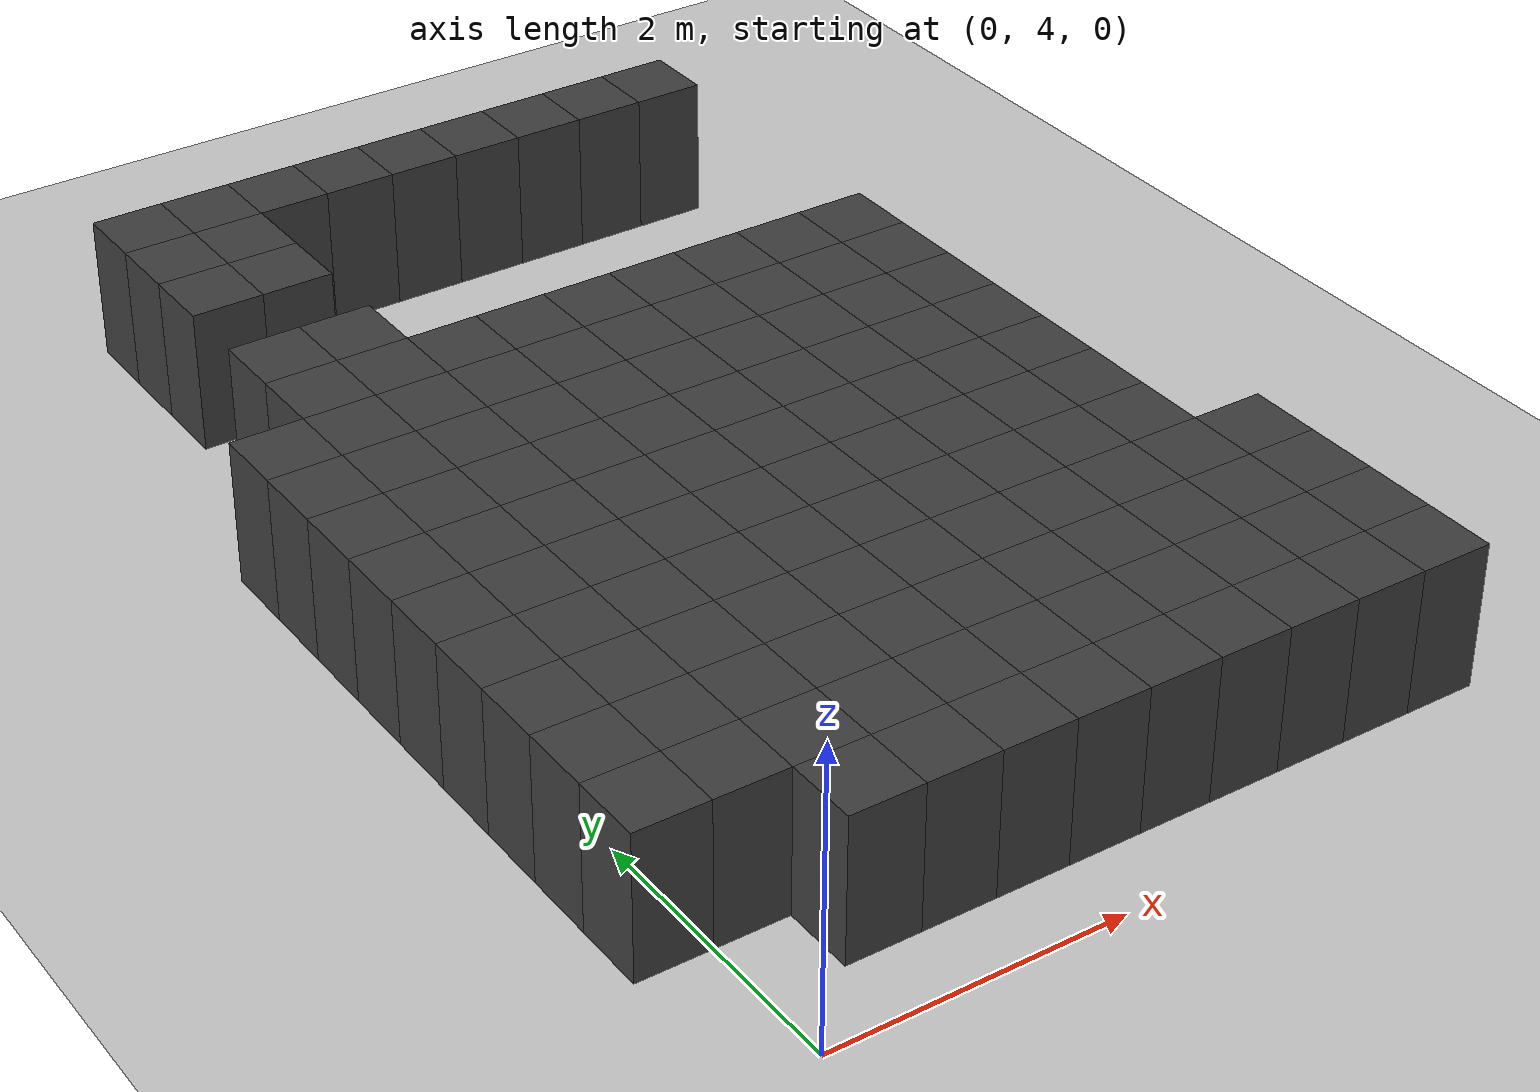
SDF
<sdf version="1.7">
 <world name="map_10764">
  <model name="ground_plane">
   <static>true</static>
   <link name="link">
    <collision name="collision">
     <geometry><plane><normal>0 0 1</normal><size>200 200</size></plane></geometry>
    </collision>
    <visual name="visual">
     <geometry><plane><normal>0 0 1</normal><size>200 200</size></plane></geometry>
     <material><ambient>0.8 0.8 0.8 1</ambient><diffuse>0.8 0.8 0.8 1</diffuse></material>
    </visual>
   </link>
  </model>
  <model name="maze_environment">
   <static>true</static>
   <link name="wall_25">
    <pose>0.250 12.250 0.500 0 0 0</pose>
    <collision name="col"><geometry><box><size>0.5 0.5 1.0</size></box></geometry></collision>
    <visual name="vis">
     <geometry><box><size>0.5 0.5 1.0</size></box></geometry>
     <material><ambient>0.15 0.15 0.15 1</ambient><diffuse>0.25 0.25 0.25 1</diffuse></material>
    </visual>
   </link>
   <link name="wall_26">
    <pose>0.750 12.250 0.500 0 0 0</pose>
    <collision name="col"><geometry><box><size>0.5 0.5 1.0</size></box></geometry></collision>
    <visual name="vis">
     <geometry><box><size>0.5 0.5 1.0</size></box></geometry>
     <material><ambient>0.15 0.15 0.15 1</ambient><diffuse>0.25 0.25 0.25 1</diffuse></material>
    </visual>
   </link>
   <link name="wall_27">
    <pose>1.250 12.250 0.500 0 0 0</pose>
    <collision name="col"><geometry><box><size>0.5 0.5 1.0</size></box></geometry></collision>
    <visual name="vis">
     <geometry><box><size>0.5 0.5 1.0</size></box></geometry>
     <material><ambient>0.15 0.15 0.15 1</ambient><diffuse>0.25 0.25 0.25 1</diffuse></material>
    </visual>
   </link>
   <link name="wall_28">
    <pose>1.750 12.250 0.500 0 0 0</pose>
    <collision name="col"><geometry><box><size>0.5 0.5 1.0</size></box></geometry></collision>
    <visual name="vis">
     <geometry><box><size>0.5 0.5 1.0</size></box></geometry>
     <material><ambient>0.15 0.15 0.15 1</ambient><diffuse>0.25 0.25 0.25 1</diffuse></material>
    </visual>
   </link>
   <link name="wall_29">
    <pose>2.250 12.250 0.500 0 0 0</pose>
    <collision name="col"><geometry><box><size>0.5 0.5 1.0</size></box></geometry></collision>
    <visual name="vis">
     <geometry><box><size>0.5 0.5 1.0</size></box></geometry>
     <material><ambient>0.15 0.15 0.15 1</ambient><diffuse>0.25 0.25 0.25 1</diffuse></material>
    </visual>
   </link>
   <link name="wall_30">
    <pose>2.750 12.250 0.500 0 0 0</pose>
    <collision name="col"><geometry><box><size>0.5 0.5 1.0</size></box></geometry></collision>
    <visual name="vis">
     <geometry><box><size>0.5 0.5 1.0</size></box></geometry>
     <material><ambient>0.15 0.15 0.15 1</ambient><diffuse>0.25 0.25 0.25 1</diffuse></material>
    </visual>
   </link>
   <link name="wall_31">
    <pose>3.250 12.250 0.500 0 0 0</pose>
    <collision name="col"><geometry><box><size>0.5 0.5 1.0</size></box></geometry></collision>
    <visual name="vis">
     <geometry><box><size>0.5 0.5 1.0</size></box></geometry>
     <material><ambient>0.15 0.15 0.15 1</ambient><diffuse>0.25 0.25 0.25 1</diffuse></material>
    </visual>
   </link>
   <link name="wall_32">
    <pose>3.750 12.250 0.500 0 0 0</pose>
    <collision name="col"><geometry><box><size>0.5 0.5 1.0</size></box></geometry></collision>
    <visual name="vis">
     <geometry><box><size>0.5 0.5 1.0</size></box></geometry>
     <material><ambient>0.15 0.15 0.15 1</ambient><diffuse>0.25 0.25 0.25 1</diffuse></material>
    </visual>
   </link>
   <link name="wall_33">
    <pose>4.250 12.250 0.500 0 0 0</pose>
    <collision name="col"><geometry><box><size>0.5 0.5 1.0</size></box></geometry></collision>
    <visual name="vis">
     <geometry><box><size>0.5 0.5 1.0</size></box></geometry>
     <material><ambient>0.15 0.15 0.15 1</ambient><diffuse>0.25 0.25 0.25 1</diffuse></material>
    </visual>
   </link>
   <link name="wall_72">
    <pose>0.250 11.750 0.500 0 0 0</pose>
    <collision name="col"><geometry><box><size>0.5 0.5 1.0</size></box></geometry></collision>
    <visual name="vis">
     <geometry><box><size>0.5 0.5 1.0</size></box></geometry>
     <material><ambient>0.15 0.15 0.15 1</ambient><diffuse>0.25 0.25 0.25 1</diffuse></material>
    </visual>
   </link>
   <link name="wall_73">
    <pose>0.750 11.750 0.500 0 0 0</pose>
    <collision name="col"><geometry><box><size>0.5 0.5 1.0</size></box></geometry></collision>
    <visual name="vis">
     <geometry><box><size>0.5 0.5 1.0</size></box></geometry>
     <material><ambient>0.15 0.15 0.15 1</ambient><diffuse>0.25 0.25 0.25 1</diffuse></material>
    </visual>
   </link>
   <link name="wall_112">
    <pose>0.250 11.250 0.500 0 0 0</pose>
    <collision name="col"><geometry><box><size>0.5 0.5 1.0</size></box></geometry></collision>
    <visual name="vis">
     <geometry><box><size>0.5 0.5 1.0</size></box></geometry>
     <material><ambient>0.15 0.15 0.15 1</ambient><diffuse>0.25 0.25 0.25 1</diffuse></material>
    </visual>
   </link>
   <link name="wall_113">
    <pose>0.750 11.250 0.500 0 0 0</pose>
    <collision name="col"><geometry><box><size>0.5 0.5 1.0</size></box></geometry></collision>
    <visual name="vis">
     <geometry><box><size>0.5 0.5 1.0</size></box></geometry>
     <material><ambient>0.15 0.15 0.15 1</ambient><diffuse>0.25 0.25 0.25 1</diffuse></material>
    </visual>
   </link>
   <link name="wall_189">
    <pose>0.250 10.250 0.500 0 0 0</pose>
    <collision name="col"><geometry><box><size>0.5 0.5 1.0</size></box></geometry></collision>
    <visual name="vis">
     <geometry><box><size>0.5 0.5 1.0</size></box></geometry>
     <material><ambient>0.15 0.15 0.15 1</ambient><diffuse>0.25 0.25 0.25 1</diffuse></material>
    </visual>
   </link>
   <link name="wall_190">
    <pose>0.750 10.250 0.500 0 0 0</pose>
    <collision name="col"><geometry><box><size>0.5 0.5 1.0</size></box></geometry></collision>
    <visual name="vis">
     <geometry><box><size>0.5 0.5 1.0</size></box></geometry>
     <material><ambient>0.15 0.15 0.15 1</ambient><diffuse>0.25 0.25 0.25 1</diffuse></material>
    </visual>
   </link>
   <link name="wall_230">
    <pose>0.250 9.750 0.500 0 0 0</pose>
    <collision name="col"><geometry><box><size>0.5 0.5 1.0</size></box></geometry></collision>
    <visual name="vis">
     <geometry><box><size>0.5 0.5 1.0</size></box></geometry>
     <material><ambient>0.15 0.15 0.15 1</ambient><diffuse>0.25 0.25 0.25 1</diffuse></material>
    </visual>
   </link>
   <link name="wall_231">
    <pose>0.750 9.750 0.500 0 0 0</pose>
    <collision name="col"><geometry><box><size>0.5 0.5 1.0</size></box></geometry></collision>
    <visual name="vis">
     <geometry><box><size>0.5 0.5 1.0</size></box></geometry>
     <material><ambient>0.15 0.15 0.15 1</ambient><diffuse>0.25 0.25 0.25 1</diffuse></material>
    </visual>
   </link>
   <link name="wall_232">
    <pose>1.250 9.750 0.500 0 0 0</pose>
    <collision name="col"><geometry><box><size>0.5 0.5 1.0</size></box></geometry></collision>
    <visual name="vis">
     <geometry><box><size>0.5 0.5 1.0</size></box></geometry>
     <material><ambient>0.15 0.15 0.15 1</ambient><diffuse>0.25 0.25 0.25 1</diffuse></material>
    </visual>
   </link>
   <link name="wall_233">
    <pose>1.750 9.750 0.500 0 0 0</pose>
    <collision name="col"><geometry><box><size>0.5 0.5 1.0</size></box></geometry></collision>
    <visual name="vis">
     <geometry><box><size>0.5 0.5 1.0</size></box></geometry>
     <material><ambient>0.15 0.15 0.15 1</ambient><diffuse>0.25 0.25 0.25 1</diffuse></material>
    </visual>
   </link>
   <link name="wall_234">
    <pose>2.250 9.750 0.500 0 0 0</pose>
    <collision name="col"><geometry><box><size>0.5 0.5 1.0</size></box></geometry></collision>
    <visual name="vis">
     <geometry><box><size>0.5 0.5 1.0</size></box></geometry>
     <material><ambient>0.15 0.15 0.15 1</ambient><diffuse>0.25 0.25 0.25 1</diffuse></material>
    </visual>
   </link>
   <link name="wall_235">
    <pose>2.750 9.750 0.500 0 0 0</pose>
    <collision name="col"><geometry><box><size>0.5 0.5 1.0</size></box></geometry></collision>
    <visual name="vis">
     <geometry><box><size>0.5 0.5 1.0</size></box></geometry>
     <material><ambient>0.15 0.15 0.15 1</ambient><diffuse>0.25 0.25 0.25 1</diffuse></material>
    </visual>
   </link>
   <link name="wall_236">
    <pose>3.250 9.750 0.500 0 0 0</pose>
    <collision name="col"><geometry><box><size>0.5 0.5 1.0</size></box></geometry></collision>
    <visual name="vis">
     <geometry><box><size>0.5 0.5 1.0</size></box></geometry>
     <material><ambient>0.15 0.15 0.15 1</ambient><diffuse>0.25 0.25 0.25 1</diffuse></material>
    </visual>
   </link>
   <link name="wall_237">
    <pose>3.750 9.750 0.500 0 0 0</pose>
    <collision name="col"><geometry><box><size>0.5 0.5 1.0</size></box></geometry></collision>
    <visual name="vis">
     <geometry><box><size>0.5 0.5 1.0</size></box></geometry>
     <material><ambient>0.15 0.15 0.15 1</ambient><diffuse>0.25 0.25 0.25 1</diffuse></material>
    </visual>
   </link>
   <link name="wall_238">
    <pose>4.250 9.750 0.500 0 0 0</pose>
    <collision name="col"><geometry><box><size>0.5 0.5 1.0</size></box></geometry></collision>
    <visual name="vis">
     <geometry><box><size>0.5 0.5 1.0</size></box></geometry>
     <material><ambient>0.15 0.15 0.15 1</ambient><diffuse>0.25 0.25 0.25 1</diffuse></material>
    </visual>
   </link>
   <link name="wall_277">
    <pose>-0.250 9.250 0.500 0 0 0</pose>
    <collision name="col"><geometry><box><size>0.5 0.5 1.0</size></box></geometry></collision>
    <visual name="vis">
     <geometry><box><size>0.5 0.5 1.0</size></box></geometry>
     <material><ambient>0.15 0.15 0.15 1</ambient><diffuse>0.25 0.25 0.25 1</diffuse></material>
    </visual>
   </link>
   <link name="wall_278">
    <pose>0.250 9.250 0.500 0 0 0</pose>
    <collision name="col"><geometry><box><size>0.5 0.5 1.0</size></box></geometry></collision>
    <visual name="vis">
     <geometry><box><size>0.5 0.5 1.0</size></box></geometry>
     <material><ambient>0.15 0.15 0.15 1</ambient><diffuse>0.25 0.25 0.25 1</diffuse></material>
    </visual>
   </link>
   <link name="wall_279">
    <pose>0.750 9.250 0.500 0 0 0</pose>
    <collision name="col"><geometry><box><size>0.5 0.5 1.0</size></box></geometry></collision>
    <visual name="vis">
     <geometry><box><size>0.5 0.5 1.0</size></box></geometry>
     <material><ambient>0.15 0.15 0.15 1</ambient><diffuse>0.25 0.25 0.25 1</diffuse></material>
    </visual>
   </link>
   <link name="wall_280">
    <pose>1.250 9.250 0.500 0 0 0</pose>
    <collision name="col"><geometry><box><size>0.5 0.5 1.0</size></box></geometry></collision>
    <visual name="vis">
     <geometry><box><size>0.5 0.5 1.0</size></box></geometry>
     <material><ambient>0.15 0.15 0.15 1</ambient><diffuse>0.25 0.25 0.25 1</diffuse></material>
    </visual>
   </link>
   <link name="wall_281">
    <pose>1.750 9.250 0.500 0 0 0</pose>
    <collision name="col"><geometry><box><size>0.5 0.5 1.0</size></box></geometry></collision>
    <visual name="vis">
     <geometry><box><size>0.5 0.5 1.0</size></box></geometry>
     <material><ambient>0.15 0.15 0.15 1</ambient><diffuse>0.25 0.25 0.25 1</diffuse></material>
    </visual>
   </link>
   <link name="wall_282">
    <pose>2.250 9.250 0.500 0 0 0</pose>
    <collision name="col"><geometry><box><size>0.5 0.5 1.0</size></box></geometry></collision>
    <visual name="vis">
     <geometry><box><size>0.5 0.5 1.0</size></box></geometry>
     <material><ambient>0.15 0.15 0.15 1</ambient><diffuse>0.25 0.25 0.25 1</diffuse></material>
    </visual>
   </link>
   <link name="wall_283">
    <pose>2.750 9.250 0.500 0 0 0</pose>
    <collision name="col"><geometry><box><size>0.5 0.5 1.0</size></box></geometry></collision>
    <visual name="vis">
     <geometry><box><size>0.5 0.5 1.0</size></box></geometry>
     <material><ambient>0.15 0.15 0.15 1</ambient><diffuse>0.25 0.25 0.25 1</diffuse></material>
    </visual>
   </link>
   <link name="wall_284">
    <pose>3.250 9.250 0.500 0 0 0</pose>
    <collision name="col"><geometry><box><size>0.5 0.5 1.0</size></box></geometry></collision>
    <visual name="vis">
     <geometry><box><size>0.5 0.5 1.0</size></box></geometry>
     <material><ambient>0.15 0.15 0.15 1</ambient><diffuse>0.25 0.25 0.25 1</diffuse></material>
    </visual>
   </link>
   <link name="wall_285">
    <pose>3.750 9.250 0.500 0 0 0</pose>
    <collision name="col"><geometry><box><size>0.5 0.5 1.0</size></box></geometry></collision>
    <visual name="vis">
     <geometry><box><size>0.5 0.5 1.0</size></box></geometry>
     <material><ambient>0.15 0.15 0.15 1</ambient><diffuse>0.25 0.25 0.25 1</diffuse></material>
    </visual>
   </link>
   <link name="wall_286">
    <pose>4.250 9.250 0.500 0 0 0</pose>
    <collision name="col"><geometry><box><size>0.5 0.5 1.0</size></box></geometry></collision>
    <visual name="vis">
     <geometry><box><size>0.5 0.5 1.0</size></box></geometry>
     <material><ambient>0.15 0.15 0.15 1</ambient><diffuse>0.25 0.25 0.25 1</diffuse></material>
    </visual>
   </link>
   <link name="wall_325">
    <pose>-0.250 8.750 0.500 0 0 0</pose>
    <collision name="col"><geometry><box><size>0.5 0.5 1.0</size></box></geometry></collision>
    <visual name="vis">
     <geometry><box><size>0.5 0.5 1.0</size></box></geometry>
     <material><ambient>0.15 0.15 0.15 1</ambient><diffuse>0.25 0.25 0.25 1</diffuse></material>
    </visual>
   </link>
   <link name="wall_326">
    <pose>0.250 8.750 0.500 0 0 0</pose>
    <collision name="col"><geometry><box><size>0.5 0.5 1.0</size></box></geometry></collision>
    <visual name="vis">
     <geometry><box><size>0.5 0.5 1.0</size></box></geometry>
     <material><ambient>0.15 0.15 0.15 1</ambient><diffuse>0.25 0.25 0.25 1</diffuse></material>
    </visual>
   </link>
   <link name="wall_327">
    <pose>0.750 8.750 0.500 0 0 0</pose>
    <collision name="col"><geometry><box><size>0.5 0.5 1.0</size></box></geometry></collision>
    <visual name="vis">
     <geometry><box><size>0.5 0.5 1.0</size></box></geometry>
     <material><ambient>0.15 0.15 0.15 1</ambient><diffuse>0.25 0.25 0.25 1</diffuse></material>
    </visual>
   </link>
   <link name="wall_328">
    <pose>1.250 8.750 0.500 0 0 0</pose>
    <collision name="col"><geometry><box><size>0.5 0.5 1.0</size></box></geometry></collision>
    <visual name="vis">
     <geometry><box><size>0.5 0.5 1.0</size></box></geometry>
     <material><ambient>0.15 0.15 0.15 1</ambient><diffuse>0.25 0.25 0.25 1</diffuse></material>
    </visual>
   </link>
   <link name="wall_329">
    <pose>1.750 8.750 0.500 0 0 0</pose>
    <collision name="col"><geometry><box><size>0.5 0.5 1.0</size></box></geometry></collision>
    <visual name="vis">
     <geometry><box><size>0.5 0.5 1.0</size></box></geometry>
     <material><ambient>0.15 0.15 0.15 1</ambient><diffuse>0.25 0.25 0.25 1</diffuse></material>
    </visual>
   </link>
   <link name="wall_330">
    <pose>2.250 8.750 0.500 0 0 0</pose>
    <collision name="col"><geometry><box><size>0.5 0.5 1.0</size></box></geometry></collision>
    <visual name="vis">
     <geometry><box><size>0.5 0.5 1.0</size></box></geometry>
     <material><ambient>0.15 0.15 0.15 1</ambient><diffuse>0.25 0.25 0.25 1</diffuse></material>
    </visual>
   </link>
   <link name="wall_331">
    <pose>2.750 8.750 0.500 0 0 0</pose>
    <collision name="col"><geometry><box><size>0.5 0.5 1.0</size></box></geometry></collision>
    <visual name="vis">
     <geometry><box><size>0.5 0.5 1.0</size></box></geometry>
     <material><ambient>0.15 0.15 0.15 1</ambient><diffuse>0.25 0.25 0.25 1</diffuse></material>
    </visual>
   </link>
   <link name="wall_332">
    <pose>3.250 8.750 0.500 0 0 0</pose>
    <collision name="col"><geometry><box><size>0.5 0.5 1.0</size></box></geometry></collision>
    <visual name="vis">
     <geometry><box><size>0.5 0.5 1.0</size></box></geometry>
     <material><ambient>0.15 0.15 0.15 1</ambient><diffuse>0.25 0.25 0.25 1</diffuse></material>
    </visual>
   </link>
   <link name="wall_333">
    <pose>3.750 8.750 0.500 0 0 0</pose>
    <collision name="col"><geometry><box><size>0.5 0.5 1.0</size></box></geometry></collision>
    <visual name="vis">
     <geometry><box><size>0.5 0.5 1.0</size></box></geometry>
     <material><ambient>0.15 0.15 0.15 1</ambient><diffuse>0.25 0.25 0.25 1</diffuse></material>
    </visual>
   </link>
   <link name="wall_334">
    <pose>4.250 8.750 0.500 0 0 0</pose>
    <collision name="col"><geometry><box><size>0.5 0.5 1.0</size></box></geometry></collision>
    <visual name="vis">
     <geometry><box><size>0.5 0.5 1.0</size></box></geometry>
     <material><ambient>0.15 0.15 0.15 1</ambient><diffuse>0.25 0.25 0.25 1</diffuse></material>
    </visual>
   </link>
   <link name="wall_373">
    <pose>-0.250 8.250 0.500 0 0 0</pose>
    <collision name="col"><geometry><box><size>0.5 0.5 1.0</size></box></geometry></collision>
    <visual name="vis">
     <geometry><box><size>0.5 0.5 1.0</size></box></geometry>
     <material><ambient>0.15 0.15 0.15 1</ambient><diffuse>0.25 0.25 0.25 1</diffuse></material>
    </visual>
   </link>
   <link name="wall_374">
    <pose>0.250 8.250 0.500 0 0 0</pose>
    <collision name="col"><geometry><box><size>0.5 0.5 1.0</size></box></geometry></collision>
    <visual name="vis">
     <geometry><box><size>0.5 0.5 1.0</size></box></geometry>
     <material><ambient>0.15 0.15 0.15 1</ambient><diffuse>0.25 0.25 0.25 1</diffuse></material>
    </visual>
   </link>
   <link name="wall_375">
    <pose>0.750 8.250 0.500 0 0 0</pose>
    <collision name="col"><geometry><box><size>0.5 0.5 1.0</size></box></geometry></collision>
    <visual name="vis">
     <geometry><box><size>0.5 0.5 1.0</size></box></geometry>
     <material><ambient>0.15 0.15 0.15 1</ambient><diffuse>0.25 0.25 0.25 1</diffuse></material>
    </visual>
   </link>
   <link name="wall_376">
    <pose>1.250 8.250 0.500 0 0 0</pose>
    <collision name="col"><geometry><box><size>0.5 0.5 1.0</size></box></geometry></collision>
    <visual name="vis">
     <geometry><box><size>0.5 0.5 1.0</size></box></geometry>
     <material><ambient>0.15 0.15 0.15 1</ambient><diffuse>0.25 0.25 0.25 1</diffuse></material>
    </visual>
   </link>
   <link name="wall_377">
    <pose>1.750 8.250 0.500 0 0 0</pose>
    <collision name="col"><geometry><box><size>0.5 0.5 1.0</size></box></geometry></collision>
    <visual name="vis">
     <geometry><box><size>0.5 0.5 1.0</size></box></geometry>
     <material><ambient>0.15 0.15 0.15 1</ambient><diffuse>0.25 0.25 0.25 1</diffuse></material>
    </visual>
   </link>
   <link name="wall_378">
    <pose>2.250 8.250 0.500 0 0 0</pose>
    <collision name="col"><geometry><box><size>0.5 0.5 1.0</size></box></geometry></collision>
    <visual name="vis">
     <geometry><box><size>0.5 0.5 1.0</size></box></geometry>
     <material><ambient>0.15 0.15 0.15 1</ambient><diffuse>0.25 0.25 0.25 1</diffuse></material>
    </visual>
   </link>
   <link name="wall_379">
    <pose>2.750 8.250 0.500 0 0 0</pose>
    <collision name="col"><geometry><box><size>0.5 0.5 1.0</size></box></geometry></collision>
    <visual name="vis">
     <geometry><box><size>0.5 0.5 1.0</size></box></geometry>
     <material><ambient>0.15 0.15 0.15 1</ambient><diffuse>0.25 0.25 0.25 1</diffuse></material>
    </visual>
   </link>
   <link name="wall_380">
    <pose>3.250 8.250 0.500 0 0 0</pose>
    <collision name="col"><geometry><box><size>0.5 0.5 1.0</size></box></geometry></collision>
    <visual name="vis">
     <geometry><box><size>0.5 0.5 1.0</size></box></geometry>
     <material><ambient>0.15 0.15 0.15 1</ambient><diffuse>0.25 0.25 0.25 1</diffuse></material>
    </visual>
   </link>
   <link name="wall_381">
    <pose>3.750 8.250 0.500 0 0 0</pose>
    <collision name="col"><geometry><box><size>0.5 0.5 1.0</size></box></geometry></collision>
    <visual name="vis">
     <geometry><box><size>0.5 0.5 1.0</size></box></geometry>
     <material><ambient>0.15 0.15 0.15 1</ambient><diffuse>0.25 0.25 0.25 1</diffuse></material>
    </visual>
   </link>
   <link name="wall_382">
    <pose>4.250 8.250 0.500 0 0 0</pose>
    <collision name="col"><geometry><box><size>0.5 0.5 1.0</size></box></geometry></collision>
    <visual name="vis">
     <geometry><box><size>0.5 0.5 1.0</size></box></geometry>
     <material><ambient>0.15 0.15 0.15 1</ambient><diffuse>0.25 0.25 0.25 1</diffuse></material>
    </visual>
   </link>
   <link name="wall_421">
    <pose>-0.250 7.750 0.500 0 0 0</pose>
    <collision name="col"><geometry><box><size>0.5 0.5 1.0</size></box></geometry></collision>
    <visual name="vis">
     <geometry><box><size>0.5 0.5 1.0</size></box></geometry>
     <material><ambient>0.15 0.15 0.15 1</ambient><diffuse>0.25 0.25 0.25 1</diffuse></material>
    </visual>
   </link>
   <link name="wall_422">
    <pose>0.250 7.750 0.500 0 0 0</pose>
    <collision name="col"><geometry><box><size>0.5 0.5 1.0</size></box></geometry></collision>
    <visual name="vis">
     <geometry><box><size>0.5 0.5 1.0</size></box></geometry>
     <material><ambient>0.15 0.15 0.15 1</ambient><diffuse>0.25 0.25 0.25 1</diffuse></material>
    </visual>
   </link>
   <link name="wall_423">
    <pose>0.750 7.750 0.500 0 0 0</pose>
    <collision name="col"><geometry><box><size>0.5 0.5 1.0</size></box></geometry></collision>
    <visual name="vis">
     <geometry><box><size>0.5 0.5 1.0</size></box></geometry>
     <material><ambient>0.15 0.15 0.15 1</ambient><diffuse>0.25 0.25 0.25 1</diffuse></material>
    </visual>
   </link>
   <link name="wall_424">
    <pose>1.250 7.750 0.500 0 0 0</pose>
    <collision name="col"><geometry><box><size>0.5 0.5 1.0</size></box></geometry></collision>
    <visual name="vis">
     <geometry><box><size>0.5 0.5 1.0</size></box></geometry>
     <material><ambient>0.15 0.15 0.15 1</ambient><diffuse>0.25 0.25 0.25 1</diffuse></material>
    </visual>
   </link>
   <link name="wall_425">
    <pose>1.750 7.750 0.500 0 0 0</pose>
    <collision name="col"><geometry><box><size>0.5 0.5 1.0</size></box></geometry></collision>
    <visual name="vis">
     <geometry><box><size>0.5 0.5 1.0</size></box></geometry>
     <material><ambient>0.15 0.15 0.15 1</ambient><diffuse>0.25 0.25 0.25 1</diffuse></material>
    </visual>
   </link>
   <link name="wall_426">
    <pose>2.250 7.750 0.500 0 0 0</pose>
    <collision name="col"><geometry><box><size>0.5 0.5 1.0</size></box></geometry></collision>
    <visual name="vis">
     <geometry><box><size>0.5 0.5 1.0</size></box></geometry>
     <material><ambient>0.15 0.15 0.15 1</ambient><diffuse>0.25 0.25 0.25 1</diffuse></material>
    </visual>
   </link>
   <link name="wall_427">
    <pose>2.750 7.750 0.500 0 0 0</pose>
    <collision name="col"><geometry><box><size>0.5 0.5 1.0</size></box></geometry></collision>
    <visual name="vis">
     <geometry><box><size>0.5 0.5 1.0</size></box></geometry>
     <material><ambient>0.15 0.15 0.15 1</ambient><diffuse>0.25 0.25 0.25 1</diffuse></material>
    </visual>
   </link>
   <link name="wall_428">
    <pose>3.250 7.750 0.500 0 0 0</pose>
    <collision name="col"><geometry><box><size>0.5 0.5 1.0</size></box></geometry></collision>
    <visual name="vis">
     <geometry><box><size>0.5 0.5 1.0</size></box></geometry>
     <material><ambient>0.15 0.15 0.15 1</ambient><diffuse>0.25 0.25 0.25 1</diffuse></material>
    </visual>
   </link>
   <link name="wall_429">
    <pose>3.750 7.750 0.500 0 0 0</pose>
    <collision name="col"><geometry><box><size>0.5 0.5 1.0</size></box></geometry></collision>
    <visual name="vis">
     <geometry><box><size>0.5 0.5 1.0</size></box></geometry>
     <material><ambient>0.15 0.15 0.15 1</ambient><diffuse>0.25 0.25 0.25 1</diffuse></material>
    </visual>
   </link>
   <link name="wall_430">
    <pose>4.250 7.750 0.500 0 0 0</pose>
    <collision name="col"><geometry><box><size>0.5 0.5 1.0</size></box></geometry></collision>
    <visual name="vis">
     <geometry><box><size>0.5 0.5 1.0</size></box></geometry>
     <material><ambient>0.15 0.15 0.15 1</ambient><diffuse>0.25 0.25 0.25 1</diffuse></material>
    </visual>
   </link>
   <link name="wall_469">
    <pose>-0.250 7.250 0.500 0 0 0</pose>
    <collision name="col"><geometry><box><size>0.5 0.5 1.0</size></box></geometry></collision>
    <visual name="vis">
     <geometry><box><size>0.5 0.5 1.0</size></box></geometry>
     <material><ambient>0.15 0.15 0.15 1</ambient><diffuse>0.25 0.25 0.25 1</diffuse></material>
    </visual>
   </link>
   <link name="wall_470">
    <pose>0.250 7.250 0.500 0 0 0</pose>
    <collision name="col"><geometry><box><size>0.5 0.5 1.0</size></box></geometry></collision>
    <visual name="vis">
     <geometry><box><size>0.5 0.5 1.0</size></box></geometry>
     <material><ambient>0.15 0.15 0.15 1</ambient><diffuse>0.25 0.25 0.25 1</diffuse></material>
    </visual>
   </link>
   <link name="wall_471">
    <pose>0.750 7.250 0.500 0 0 0</pose>
    <collision name="col"><geometry><box><size>0.5 0.5 1.0</size></box></geometry></collision>
    <visual name="vis">
     <geometry><box><size>0.5 0.5 1.0</size></box></geometry>
     <material><ambient>0.15 0.15 0.15 1</ambient><diffuse>0.25 0.25 0.25 1</diffuse></material>
    </visual>
   </link>
   <link name="wall_472">
    <pose>1.250 7.250 0.500 0 0 0</pose>
    <collision name="col"><geometry><box><size>0.5 0.5 1.0</size></box></geometry></collision>
    <visual name="vis">
     <geometry><box><size>0.5 0.5 1.0</size></box></geometry>
     <material><ambient>0.15 0.15 0.15 1</ambient><diffuse>0.25 0.25 0.25 1</diffuse></material>
    </visual>
   </link>
   <link name="wall_473">
    <pose>1.750 7.250 0.500 0 0 0</pose>
    <collision name="col"><geometry><box><size>0.5 0.5 1.0</size></box></geometry></collision>
    <visual name="vis">
     <geometry><box><size>0.5 0.5 1.0</size></box></geometry>
     <material><ambient>0.15 0.15 0.15 1</ambient><diffuse>0.25 0.25 0.25 1</diffuse></material>
    </visual>
   </link>
   <link name="wall_474">
    <pose>2.250 7.250 0.500 0 0 0</pose>
    <collision name="col"><geometry><box><size>0.5 0.5 1.0</size></box></geometry></collision>
    <visual name="vis">
     <geometry><box><size>0.5 0.5 1.0</size></box></geometry>
     <material><ambient>0.15 0.15 0.15 1</ambient><diffuse>0.25 0.25 0.25 1</diffuse></material>
    </visual>
   </link>
   <link name="wall_475">
    <pose>2.750 7.250 0.500 0 0 0</pose>
    <collision name="col"><geometry><box><size>0.5 0.5 1.0</size></box></geometry></collision>
    <visual name="vis">
     <geometry><box><size>0.5 0.5 1.0</size></box></geometry>
     <material><ambient>0.15 0.15 0.15 1</ambient><diffuse>0.25 0.25 0.25 1</diffuse></material>
    </visual>
   </link>
   <link name="wall_476">
    <pose>3.250 7.250 0.500 0 0 0</pose>
    <collision name="col"><geometry><box><size>0.5 0.5 1.0</size></box></geometry></collision>
    <visual name="vis">
     <geometry><box><size>0.5 0.5 1.0</size></box></geometry>
     <material><ambient>0.15 0.15 0.15 1</ambient><diffuse>0.25 0.25 0.25 1</diffuse></material>
    </visual>
   </link>
   <link name="wall_477">
    <pose>3.750 7.250 0.500 0 0 0</pose>
    <collision name="col"><geometry><box><size>0.5 0.5 1.0</size></box></geometry></collision>
    <visual name="vis">
     <geometry><box><size>0.5 0.5 1.0</size></box></geometry>
     <material><ambient>0.15 0.15 0.15 1</ambient><diffuse>0.25 0.25 0.25 1</diffuse></material>
    </visual>
   </link>
   <link name="wall_478">
    <pose>4.250 7.250 0.500 0 0 0</pose>
    <collision name="col"><geometry><box><size>0.5 0.5 1.0</size></box></geometry></collision>
    <visual name="vis">
     <geometry><box><size>0.5 0.5 1.0</size></box></geometry>
     <material><ambient>0.15 0.15 0.15 1</ambient><diffuse>0.25 0.25 0.25 1</diffuse></material>
    </visual>
   </link>
   <link name="wall_517">
    <pose>-0.250 6.750 0.500 0 0 0</pose>
    <collision name="col"><geometry><box><size>0.5 0.5 1.0</size></box></geometry></collision>
    <visual name="vis">
     <geometry><box><size>0.5 0.5 1.0</size></box></geometry>
     <material><ambient>0.15 0.15 0.15 1</ambient><diffuse>0.25 0.25 0.25 1</diffuse></material>
    </visual>
   </link>
   <link name="wall_518">
    <pose>0.250 6.750 0.500 0 0 0</pose>
    <collision name="col"><geometry><box><size>0.5 0.5 1.0</size></box></geometry></collision>
    <visual name="vis">
     <geometry><box><size>0.5 0.5 1.0</size></box></geometry>
     <material><ambient>0.15 0.15 0.15 1</ambient><diffuse>0.25 0.25 0.25 1</diffuse></material>
    </visual>
   </link>
   <link name="wall_519">
    <pose>0.750 6.750 0.500 0 0 0</pose>
    <collision name="col"><geometry><box><size>0.5 0.5 1.0</size></box></geometry></collision>
    <visual name="vis">
     <geometry><box><size>0.5 0.5 1.0</size></box></geometry>
     <material><ambient>0.15 0.15 0.15 1</ambient><diffuse>0.25 0.25 0.25 1</diffuse></material>
    </visual>
   </link>
   <link name="wall_520">
    <pose>1.250 6.750 0.500 0 0 0</pose>
    <collision name="col"><geometry><box><size>0.5 0.5 1.0</size></box></geometry></collision>
    <visual name="vis">
     <geometry><box><size>0.5 0.5 1.0</size></box></geometry>
     <material><ambient>0.15 0.15 0.15 1</ambient><diffuse>0.25 0.25 0.25 1</diffuse></material>
    </visual>
   </link>
   <link name="wall_521">
    <pose>1.750 6.750 0.500 0 0 0</pose>
    <collision name="col"><geometry><box><size>0.5 0.5 1.0</size></box></geometry></collision>
    <visual name="vis">
     <geometry><box><size>0.5 0.5 1.0</size></box></geometry>
     <material><ambient>0.15 0.15 0.15 1</ambient><diffuse>0.25 0.25 0.25 1</diffuse></material>
    </visual>
   </link>
   <link name="wall_522">
    <pose>2.250 6.750 0.500 0 0 0</pose>
    <collision name="col"><geometry><box><size>0.5 0.5 1.0</size></box></geometry></collision>
    <visual name="vis">
     <geometry><box><size>0.5 0.5 1.0</size></box></geometry>
     <material><ambient>0.15 0.15 0.15 1</ambient><diffuse>0.25 0.25 0.25 1</diffuse></material>
    </visual>
   </link>
   <link name="wall_523">
    <pose>2.750 6.750 0.500 0 0 0</pose>
    <collision name="col"><geometry><box><size>0.5 0.5 1.0</size></box></geometry></collision>
    <visual name="vis">
     <geometry><box><size>0.5 0.5 1.0</size></box></geometry>
     <material><ambient>0.15 0.15 0.15 1</ambient><diffuse>0.25 0.25 0.25 1</diffuse></material>
    </visual>
   </link>
   <link name="wall_524">
    <pose>3.250 6.750 0.500 0 0 0</pose>
    <collision name="col"><geometry><box><size>0.5 0.5 1.0</size></box></geometry></collision>
    <visual name="vis">
     <geometry><box><size>0.5 0.5 1.0</size></box></geometry>
     <material><ambient>0.15 0.15 0.15 1</ambient><diffuse>0.25 0.25 0.25 1</diffuse></material>
    </visual>
   </link>
   <link name="wall_525">
    <pose>3.750 6.750 0.500 0 0 0</pose>
    <collision name="col"><geometry><box><size>0.5 0.5 1.0</size></box></geometry></collision>
    <visual name="vis">
     <geometry><box><size>0.5 0.5 1.0</size></box></geometry>
     <material><ambient>0.15 0.15 0.15 1</ambient><diffuse>0.25 0.25 0.25 1</diffuse></material>
    </visual>
   </link>
   <link name="wall_526">
    <pose>4.250 6.750 0.500 0 0 0</pose>
    <collision name="col"><geometry><box><size>0.5 0.5 1.0</size></box></geometry></collision>
    <visual name="vis">
     <geometry><box><size>0.5 0.5 1.0</size></box></geometry>
     <material><ambient>0.15 0.15 0.15 1</ambient><diffuse>0.25 0.25 0.25 1</diffuse></material>
    </visual>
   </link>
   <link name="wall_565">
    <pose>-0.250 6.250 0.500 0 0 0</pose>
    <collision name="col"><geometry><box><size>0.5 0.5 1.0</size></box></geometry></collision>
    <visual name="vis">
     <geometry><box><size>0.5 0.5 1.0</size></box></geometry>
     <material><ambient>0.15 0.15 0.15 1</ambient><diffuse>0.25 0.25 0.25 1</diffuse></material>
    </visual>
   </link>
   <link name="wall_566">
    <pose>0.250 6.250 0.500 0 0 0</pose>
    <collision name="col"><geometry><box><size>0.5 0.5 1.0</size></box></geometry></collision>
    <visual name="vis">
     <geometry><box><size>0.5 0.5 1.0</size></box></geometry>
     <material><ambient>0.15 0.15 0.15 1</ambient><diffuse>0.25 0.25 0.25 1</diffuse></material>
    </visual>
   </link>
   <link name="wall_567">
    <pose>0.750 6.250 0.500 0 0 0</pose>
    <collision name="col"><geometry><box><size>0.5 0.5 1.0</size></box></geometry></collision>
    <visual name="vis">
     <geometry><box><size>0.5 0.5 1.0</size></box></geometry>
     <material><ambient>0.15 0.15 0.15 1</ambient><diffuse>0.25 0.25 0.25 1</diffuse></material>
    </visual>
   </link>
   <link name="wall_568">
    <pose>1.250 6.250 0.500 0 0 0</pose>
    <collision name="col"><geometry><box><size>0.5 0.5 1.0</size></box></geometry></collision>
    <visual name="vis">
     <geometry><box><size>0.5 0.5 1.0</size></box></geometry>
     <material><ambient>0.15 0.15 0.15 1</ambient><diffuse>0.25 0.25 0.25 1</diffuse></material>
    </visual>
   </link>
   <link name="wall_569">
    <pose>1.750 6.250 0.500 0 0 0</pose>
    <collision name="col"><geometry><box><size>0.5 0.5 1.0</size></box></geometry></collision>
    <visual name="vis">
     <geometry><box><size>0.5 0.5 1.0</size></box></geometry>
     <material><ambient>0.15 0.15 0.15 1</ambient><diffuse>0.25 0.25 0.25 1</diffuse></material>
    </visual>
   </link>
   <link name="wall_570">
    <pose>2.250 6.250 0.500 0 0 0</pose>
    <collision name="col"><geometry><box><size>0.5 0.5 1.0</size></box></geometry></collision>
    <visual name="vis">
     <geometry><box><size>0.5 0.5 1.0</size></box></geometry>
     <material><ambient>0.15 0.15 0.15 1</ambient><diffuse>0.25 0.25 0.25 1</diffuse></material>
    </visual>
   </link>
   <link name="wall_571">
    <pose>2.750 6.250 0.500 0 0 0</pose>
    <collision name="col"><geometry><box><size>0.5 0.5 1.0</size></box></geometry></collision>
    <visual name="vis">
     <geometry><box><size>0.5 0.5 1.0</size></box></geometry>
     <material><ambient>0.15 0.15 0.15 1</ambient><diffuse>0.25 0.25 0.25 1</diffuse></material>
    </visual>
   </link>
   <link name="wall_572">
    <pose>3.250 6.250 0.500 0 0 0</pose>
    <collision name="col"><geometry><box><size>0.5 0.5 1.0</size></box></geometry></collision>
    <visual name="vis">
     <geometry><box><size>0.5 0.5 1.0</size></box></geometry>
     <material><ambient>0.15 0.15 0.15 1</ambient><diffuse>0.25 0.25 0.25 1</diffuse></material>
    </visual>
   </link>
   <link name="wall_573">
    <pose>3.750 6.250 0.500 0 0 0</pose>
    <collision name="col"><geometry><box><size>0.5 0.5 1.0</size></box></geometry></collision>
    <visual name="vis">
     <geometry><box><size>0.5 0.5 1.0</size></box></geometry>
     <material><ambient>0.15 0.15 0.15 1</ambient><diffuse>0.25 0.25 0.25 1</diffuse></material>
    </visual>
   </link>
   <link name="wall_574">
    <pose>4.250 6.250 0.500 0 0 0</pose>
    <collision name="col"><geometry><box><size>0.5 0.5 1.0</size></box></geometry></collision>
    <visual name="vis">
     <geometry><box><size>0.5 0.5 1.0</size></box></geometry>
     <material><ambient>0.15 0.15 0.15 1</ambient><diffuse>0.25 0.25 0.25 1</diffuse></material>
    </visual>
   </link>
   <link name="wall_575">
    <pose>4.750 6.250 0.500 0 0 0</pose>
    <collision name="col"><geometry><box><size>0.5 0.5 1.0</size></box></geometry></collision>
    <visual name="vis">
     <geometry><box><size>0.5 0.5 1.0</size></box></geometry>
     <material><ambient>0.15 0.15 0.15 1</ambient><diffuse>0.25 0.25 0.25 1</diffuse></material>
    </visual>
   </link>
   <link name="wall_613">
    <pose>-0.250 5.750 0.500 0 0 0</pose>
    <collision name="col"><geometry><box><size>0.5 0.5 1.0</size></box></geometry></collision>
    <visual name="vis">
     <geometry><box><size>0.5 0.5 1.0</size></box></geometry>
     <material><ambient>0.15 0.15 0.15 1</ambient><diffuse>0.25 0.25 0.25 1</diffuse></material>
    </visual>
   </link>
   <link name="wall_614">
    <pose>0.250 5.750 0.500 0 0 0</pose>
    <collision name="col"><geometry><box><size>0.5 0.5 1.0</size></box></geometry></collision>
    <visual name="vis">
     <geometry><box><size>0.5 0.5 1.0</size></box></geometry>
     <material><ambient>0.15 0.15 0.15 1</ambient><diffuse>0.25 0.25 0.25 1</diffuse></material>
    </visual>
   </link>
   <link name="wall_615">
    <pose>0.750 5.750 0.500 0 0 0</pose>
    <collision name="col"><geometry><box><size>0.5 0.5 1.0</size></box></geometry></collision>
    <visual name="vis">
     <geometry><box><size>0.5 0.5 1.0</size></box></geometry>
     <material><ambient>0.15 0.15 0.15 1</ambient><diffuse>0.25 0.25 0.25 1</diffuse></material>
    </visual>
   </link>
   <link name="wall_616">
    <pose>1.250 5.750 0.500 0 0 0</pose>
    <collision name="col"><geometry><box><size>0.5 0.5 1.0</size></box></geometry></collision>
    <visual name="vis">
     <geometry><box><size>0.5 0.5 1.0</size></box></geometry>
     <material><ambient>0.15 0.15 0.15 1</ambient><diffuse>0.25 0.25 0.25 1</diffuse></material>
    </visual>
   </link>
   <link name="wall_617">
    <pose>1.750 5.750 0.500 0 0 0</pose>
    <collision name="col"><geometry><box><size>0.5 0.5 1.0</size></box></geometry></collision>
    <visual name="vis">
     <geometry><box><size>0.5 0.5 1.0</size></box></geometry>
     <material><ambient>0.15 0.15 0.15 1</ambient><diffuse>0.25 0.25 0.25 1</diffuse></material>
    </visual>
   </link>
   <link name="wall_618">
    <pose>2.250 5.750 0.500 0 0 0</pose>
    <collision name="col"><geometry><box><size>0.5 0.5 1.0</size></box></geometry></collision>
    <visual name="vis">
     <geometry><box><size>0.5 0.5 1.0</size></box></geometry>
     <material><ambient>0.15 0.15 0.15 1</ambient><diffuse>0.25 0.25 0.25 1</diffuse></material>
    </visual>
   </link>
   <link name="wall_619">
    <pose>2.750 5.750 0.500 0 0 0</pose>
    <collision name="col"><geometry><box><size>0.5 0.5 1.0</size></box></geometry></collision>
    <visual name="vis">
     <geometry><box><size>0.5 0.5 1.0</size></box></geometry>
     <material><ambient>0.15 0.15 0.15 1</ambient><diffuse>0.25 0.25 0.25 1</diffuse></material>
    </visual>
   </link>
   <link name="wall_620">
    <pose>3.250 5.750 0.500 0 0 0</pose>
    <collision name="col"><geometry><box><size>0.5 0.5 1.0</size></box></geometry></collision>
    <visual name="vis">
     <geometry><box><size>0.5 0.5 1.0</size></box></geometry>
     <material><ambient>0.15 0.15 0.15 1</ambient><diffuse>0.25 0.25 0.25 1</diffuse></material>
    </visual>
   </link>
   <link name="wall_621">
    <pose>3.750 5.750 0.500 0 0 0</pose>
    <collision name="col"><geometry><box><size>0.5 0.5 1.0</size></box></geometry></collision>
    <visual name="vis">
     <geometry><box><size>0.5 0.5 1.0</size></box></geometry>
     <material><ambient>0.15 0.15 0.15 1</ambient><diffuse>0.25 0.25 0.25 1</diffuse></material>
    </visual>
   </link>
   <link name="wall_622">
    <pose>4.250 5.750 0.500 0 0 0</pose>
    <collision name="col"><geometry><box><size>0.5 0.5 1.0</size></box></geometry></collision>
    <visual name="vis">
     <geometry><box><size>0.5 0.5 1.0</size></box></geometry>
     <material><ambient>0.15 0.15 0.15 1</ambient><diffuse>0.25 0.25 0.25 1</diffuse></material>
    </visual>
   </link>
   <link name="wall_623">
    <pose>4.750 5.750 0.500 0 0 0</pose>
    <collision name="col"><geometry><box><size>0.5 0.5 1.0</size></box></geometry></collision>
    <visual name="vis">
     <geometry><box><size>0.5 0.5 1.0</size></box></geometry>
     <material><ambient>0.15 0.15 0.15 1</ambient><diffuse>0.25 0.25 0.25 1</diffuse></material>
    </visual>
   </link>
   <link name="wall_661">
    <pose>-0.250 5.250 0.500 0 0 0</pose>
    <collision name="col"><geometry><box><size>0.5 0.5 1.0</size></box></geometry></collision>
    <visual name="vis">
     <geometry><box><size>0.5 0.5 1.0</size></box></geometry>
     <material><ambient>0.15 0.15 0.15 1</ambient><diffuse>0.25 0.25 0.25 1</diffuse></material>
    </visual>
   </link>
   <link name="wall_662">
    <pose>0.250 5.250 0.500 0 0 0</pose>
    <collision name="col"><geometry><box><size>0.5 0.5 1.0</size></box></geometry></collision>
    <visual name="vis">
     <geometry><box><size>0.5 0.5 1.0</size></box></geometry>
     <material><ambient>0.15 0.15 0.15 1</ambient><diffuse>0.25 0.25 0.25 1</diffuse></material>
    </visual>
   </link>
   <link name="wall_663">
    <pose>0.750 5.250 0.500 0 0 0</pose>
    <collision name="col"><geometry><box><size>0.5 0.5 1.0</size></box></geometry></collision>
    <visual name="vis">
     <geometry><box><size>0.5 0.5 1.0</size></box></geometry>
     <material><ambient>0.15 0.15 0.15 1</ambient><diffuse>0.25 0.25 0.25 1</diffuse></material>
    </visual>
   </link>
   <link name="wall_664">
    <pose>1.250 5.250 0.500 0 0 0</pose>
    <collision name="col"><geometry><box><size>0.5 0.5 1.0</size></box></geometry></collision>
    <visual name="vis">
     <geometry><box><size>0.5 0.5 1.0</size></box></geometry>
     <material><ambient>0.15 0.15 0.15 1</ambient><diffuse>0.25 0.25 0.25 1</diffuse></material>
    </visual>
   </link>
   <link name="wall_665">
    <pose>1.750 5.250 0.500 0 0 0</pose>
    <collision name="col"><geometry><box><size>0.5 0.5 1.0</size></box></geometry></collision>
    <visual name="vis">
     <geometry><box><size>0.5 0.5 1.0</size></box></geometry>
     <material><ambient>0.15 0.15 0.15 1</ambient><diffuse>0.25 0.25 0.25 1</diffuse></material>
    </visual>
   </link>
   <link name="wall_666">
    <pose>2.250 5.250 0.500 0 0 0</pose>
    <collision name="col"><geometry><box><size>0.5 0.5 1.0</size></box></geometry></collision>
    <visual name="vis">
     <geometry><box><size>0.5 0.5 1.0</size></box></geometry>
     <material><ambient>0.15 0.15 0.15 1</ambient><diffuse>0.25 0.25 0.25 1</diffuse></material>
    </visual>
   </link>
   <link name="wall_667">
    <pose>2.750 5.250 0.500 0 0 0</pose>
    <collision name="col"><geometry><box><size>0.5 0.5 1.0</size></box></geometry></collision>
    <visual name="vis">
     <geometry><box><size>0.5 0.5 1.0</size></box></geometry>
     <material><ambient>0.15 0.15 0.15 1</ambient><diffuse>0.25 0.25 0.25 1</diffuse></material>
    </visual>
   </link>
   <link name="wall_668">
    <pose>3.250 5.250 0.500 0 0 0</pose>
    <collision name="col"><geometry><box><size>0.5 0.5 1.0</size></box></geometry></collision>
    <visual name="vis">
     <geometry><box><size>0.5 0.5 1.0</size></box></geometry>
     <material><ambient>0.15 0.15 0.15 1</ambient><diffuse>0.25 0.25 0.25 1</diffuse></material>
    </visual>
   </link>
   <link name="wall_669">
    <pose>3.750 5.250 0.500 0 0 0</pose>
    <collision name="col"><geometry><box><size>0.5 0.5 1.0</size></box></geometry></collision>
    <visual name="vis">
     <geometry><box><size>0.5 0.5 1.0</size></box></geometry>
     <material><ambient>0.15 0.15 0.15 1</ambient><diffuse>0.25 0.25 0.25 1</diffuse></material>
    </visual>
   </link>
   <link name="wall_670">
    <pose>4.250 5.250 0.500 0 0 0</pose>
    <collision name="col"><geometry><box><size>0.5 0.5 1.0</size></box></geometry></collision>
    <visual name="vis">
     <geometry><box><size>0.5 0.5 1.0</size></box></geometry>
     <material><ambient>0.15 0.15 0.15 1</ambient><diffuse>0.25 0.25 0.25 1</diffuse></material>
    </visual>
   </link>
   <link name="wall_671">
    <pose>4.750 5.250 0.500 0 0 0</pose>
    <collision name="col"><geometry><box><size>0.5 0.5 1.0</size></box></geometry></collision>
    <visual name="vis">
     <geometry><box><size>0.5 0.5 1.0</size></box></geometry>
     <material><ambient>0.15 0.15 0.15 1</ambient><diffuse>0.25 0.25 0.25 1</diffuse></material>
    </visual>
   </link>
   <link name="wall_711">
    <pose>0.750 4.750 0.500 0 0 0</pose>
    <collision name="col"><geometry><box><size>0.5 0.5 1.0</size></box></geometry></collision>
    <visual name="vis">
     <geometry><box><size>0.5 0.5 1.0</size></box></geometry>
     <material><ambient>0.15 0.15 0.15 1</ambient><diffuse>0.25 0.25 0.25 1</diffuse></material>
    </visual>
   </link>
   <link name="wall_712">
    <pose>1.250 4.750 0.500 0 0 0</pose>
    <collision name="col"><geometry><box><size>0.5 0.5 1.0</size></box></geometry></collision>
    <visual name="vis">
     <geometry><box><size>0.5 0.5 1.0</size></box></geometry>
     <material><ambient>0.15 0.15 0.15 1</ambient><diffuse>0.25 0.25 0.25 1</diffuse></material>
    </visual>
   </link>
   <link name="wall_713">
    <pose>1.750 4.750 0.500 0 0 0</pose>
    <collision name="col"><geometry><box><size>0.5 0.5 1.0</size></box></geometry></collision>
    <visual name="vis">
     <geometry><box><size>0.5 0.5 1.0</size></box></geometry>
     <material><ambient>0.15 0.15 0.15 1</ambient><diffuse>0.25 0.25 0.25 1</diffuse></material>
    </visual>
   </link>
   <link name="wall_714">
    <pose>2.250 4.750 0.500 0 0 0</pose>
    <collision name="col"><geometry><box><size>0.5 0.5 1.0</size></box></geometry></collision>
    <visual name="vis">
     <geometry><box><size>0.5 0.5 1.0</size></box></geometry>
     <material><ambient>0.15 0.15 0.15 1</ambient><diffuse>0.25 0.25 0.25 1</diffuse></material>
    </visual>
   </link>
   <link name="wall_715">
    <pose>2.750 4.750 0.500 0 0 0</pose>
    <collision name="col"><geometry><box><size>0.5 0.5 1.0</size></box></geometry></collision>
    <visual name="vis">
     <geometry><box><size>0.5 0.5 1.0</size></box></geometry>
     <material><ambient>0.15 0.15 0.15 1</ambient><diffuse>0.25 0.25 0.25 1</diffuse></material>
    </visual>
   </link>
   <link name="wall_716">
    <pose>3.250 4.750 0.500 0 0 0</pose>
    <collision name="col"><geometry><box><size>0.5 0.5 1.0</size></box></geometry></collision>
    <visual name="vis">
     <geometry><box><size>0.5 0.5 1.0</size></box></geometry>
     <material><ambient>0.15 0.15 0.15 1</ambient><diffuse>0.25 0.25 0.25 1</diffuse></material>
    </visual>
   </link>
   <link name="wall_717">
    <pose>3.750 4.750 0.500 0 0 0</pose>
    <collision name="col"><geometry><box><size>0.5 0.5 1.0</size></box></geometry></collision>
    <visual name="vis">
     <geometry><box><size>0.5 0.5 1.0</size></box></geometry>
     <material><ambient>0.15 0.15 0.15 1</ambient><diffuse>0.25 0.25 0.25 1</diffuse></material>
    </visual>
   </link>
   <link name="wall_718">
    <pose>4.250 4.750 0.500 0 0 0</pose>
    <collision name="col"><geometry><box><size>0.5 0.5 1.0</size></box></geometry></collision>
    <visual name="vis">
     <geometry><box><size>0.5 0.5 1.0</size></box></geometry>
     <material><ambient>0.15 0.15 0.15 1</ambient><diffuse>0.25 0.25 0.25 1</diffuse></material>
    </visual>
   </link>
   <link name="wall_719">
    <pose>4.750 4.750 0.500 0 0 0</pose>
    <collision name="col"><geometry><box><size>0.5 0.5 1.0</size></box></geometry></collision>
    <visual name="vis">
     <geometry><box><size>0.5 0.5 1.0</size></box></geometry>
     <material><ambient>0.15 0.15 0.15 1</ambient><diffuse>0.25 0.25 0.25 1</diffuse></material>
    </visual>
   </link>
  </model>
 </world>
</sdf>
